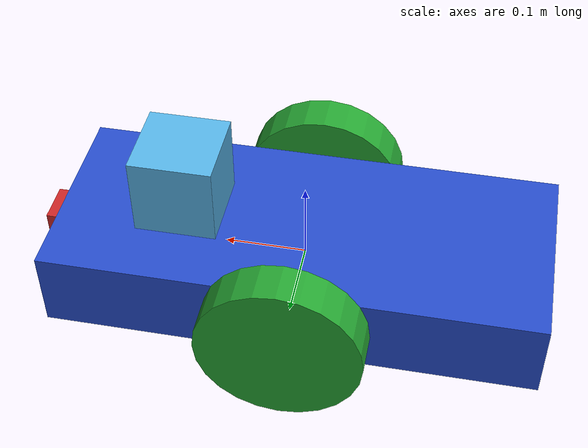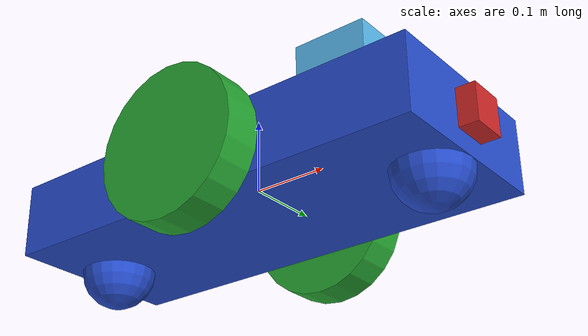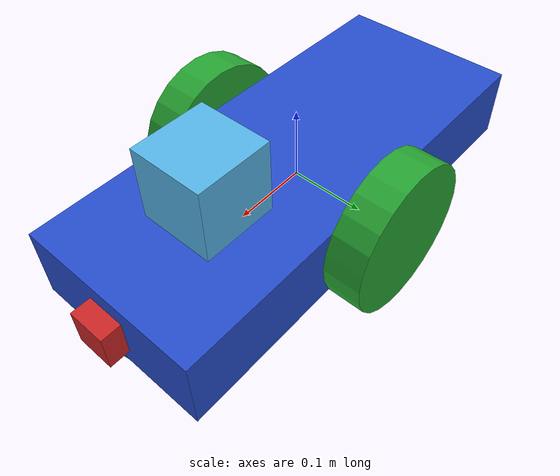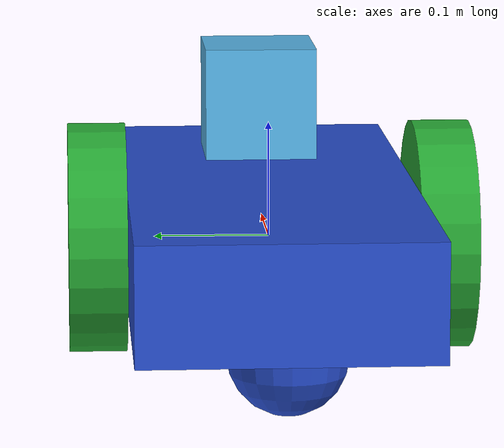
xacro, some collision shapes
<?xml version='1.0'?>

<robot name="my_robot" xmlns:xacro="http://www.ros.org/wiki/xacro">

  <xacro:include filename="$(find my_robot)/urdf/my_robot.gazebo" />

  <link name="robot_footprint"></link>

  <joint name="robot_footprint_joint" type="fixed">
    <origin xyz="0 0 0" rpy="0 0 0" />
    <parent link="robot_footprint"/>
    <child link="chassis" />
  </joint>

  <joint name="hokuyo_joint" type="fixed">
    <origin xyz="0.15 0 0.1" rpy="0 0 0"/>
    <child link="hokuyo"/>
    <parent link="chassis"/>
    <axis xyz="0 1 0" rpy="0 0 0"/>
  </joint>

  <link name='hokuyo'>
    <inertial>
      <mass value="1e-5"/>
      <origin xyz="0 0 0" rpy="0 0 0 "/>
       <inertia
          ixx="1e-6" ixy="0" ixz="0"
          iyy="1e-6" iyz="0"
          izz="1e-6"
       />
    </inertial>

    <collision name='collision'>
      <origin xyz="0 0 0" rpy=" 0 0 0"/>
      <geometry>
        <box size="0.1 0.1 0.1"/>
      </geometry>
    </collision>

    <visual name='hokuyo_visual'>
      <origin xyz="0 0 0" rpy=" 0 0 0"/>
      <geometry>
        <mesh filename="package://my_robot/meshes/hokuyo.dae"/>
      </geometry>
    </visual>
  </link>

  <joint name="camera_joint" type="fixed">
    <origin xyz="0.3 0 0" rpy="0 0 0"/>
    <child link="camera"/>
    <parent link="chassis"/>
    <axis xyz="0 1 0" rpy="0 0 0"/>
  </joint>

  <link name='camera'>

    <inertial>
      <mass value="0.1"/>
      <origin xyz="0 0 0" rpy="0 0 0 "/>
       <inertia
          ixx="1e-6" ixy="0" ixz="0"
          iyy="1e-6" iyz="0"
          izz="1e-6"
       />
    </inertial>

    <collision name='collision'>
      <origin xyz="0 0 0" rpy=" 0 0 0"/>
      <geometry>
        <box size=".05 .05 .05"/>
      </geometry>
    </collision>

    <visual name='camera_visual'>
      <origin xyz="0 0 0" rpy=" 0 0 0"/>
      <geometry>
         <box size=".05 .05 .05"/>
      </geometry>
    </visual>
  </link>

  <link name='chassis'>
    <pose>0 0 0.1 0 0 0</pose>

    <inertial>
      <mass value="15.0"/>
      <origin xyz="0.0 0 0" rpy=" 0 0 0"/>
      <inertia
          ixx="0.1" ixy="0" ixz="0"
          iyy="0.1" iyz="0"
          izz="0.1"
      />
    </inertial>

    <collision name='collision'>
      <origin xyz="0 0 0" rpy=" 0 0 0"/>
      <geometry>
        <box size=".6 .25 .1"/>
      </geometry>
    </collision>

    <visual name='chassis_visual'>
      <origin xyz="0 0 0" rpy=" 0 0 0"/>
      <geometry>
        <box size=".6 .25 .1"/>
      </geometry>
    </visual>

    <collision name='back_caster_collision'>
      <origin xyz="-0.25 0 -0.05" rpy=" 0 0 0"/>
      <geometry>
        <sphere radius="0.0499"/>
      </geometry>
    </collision>

    <visual name='back_caster_visual'>
      <origin xyz="-0.25 0 -0.05" rpy=" 0 0 0"/>
      <geometry>
        <sphere radius="0.05"/>
      </geometry>
    </visual>

    <collision name='front_caster_collision'>
      <origin xyz="0.25 0 -0.05" rpy=" 0 0 0"/>
      <geometry>
        <sphere radius="0.0499"/>
      </geometry>
    </collision>

    <visual name='front_caster_visual'>
      <origin xyz="0.25 0 -0.05" rpy=" 0 0 0"/>
      <geometry>
        <sphere radius="0.05"/>
      </geometry>
    </visual>

  </link>

  <joint name="right_wheel_hinge" type="continuous">
    <origin xyz="0 -0.15 0" rpy="0 0 0"/>
    <child link="right_wheel"/>
    <parent link="chassis"/>
    <axis xyz="0 1 0" rpy="0 0 0"/>
    <limit effort="10000" velocity="1000"/>
    <dynamics damping="1.0" friction="1.0"/>
  </joint>

  <link name="right_wheel">

    <inertial>
      <mass value="5"/>
      <origin xyz="0 0 0" rpy=" 0 1.5707 1.5707"/>
      <inertia
          ixx="0.1" ixy="0" ixz="0"
          iyy="0.1" iyz="0"
          izz="0.1"
      />
    </inertial>

    <collision name='collision'>
      <origin xyz="0 0 0" rpy=" 0 1.5707 1.5707"/>
      <geometry>
        <cylinder radius="0.1" length="0.05"/>
      </geometry>
    </collision>

    <visual name='right_wheel_visual'>
      <origin xyz="0 0 0" rpy=" 0 1.5707 1.5707"/>
      <geometry>
         <cylinder radius="0.1" length="0.05"/>
      </geometry>
    </visual>
  </link>

  <joint name="left_wheel_hinge" type="continuous">
    <origin xyz="0 0.15 0" rpy="0 0 0"/>
    <child link="left_wheel"/>
    <parent link="chassis"/>
    <axis xyz="0 1 0" rpy="0 0 0"/>
    <limit effort="10000" velocity="1000"/>
    <dynamics damping="1.0" friction="1.0"/>
  </joint>

  <link name="left_wheel">

    <inertial>
      <mass value="5"/>
      <origin xyz="0 0 0" rpy=" 0 1.5707 1.5707"/>
      <inertia
          ixx="0.1" ixy="0" ixz="0"
          iyy="0.1" iyz="0"
          izz="0.1"
      />
    </inertial>

    <collision name='collision'>
      <origin xyz="0 0 0" rpy=" 0 1.5707 1.5707"/>
      <geometry>
        <cylinder radius="0.1" length="0.05"/>
      </geometry>
    </collision>

    <visual name='left_wheel_visual'>
      <origin xyz="0 0 0" rpy=" 0 1.5707 1.5707"/>
      <geometry>
         <cylinder radius="0.1" length="0.05"/>
      </geometry>
    </visual>
  </link>

  <gazebo reference="chassis">
    <material>Gazebo/Blue</material>
  </gazebo>

  <gazebo reference="left_wheel">
    <material>Gazebo/Green</material>
  </gazebo>

  <gazebo reference="right_wheel">
    <material>Gazebo/Green</material>
  </gazebo>

  <gazebo reference="camera">
    <material>Gazebo/Red</material>
  </gazebo>

</robot>
